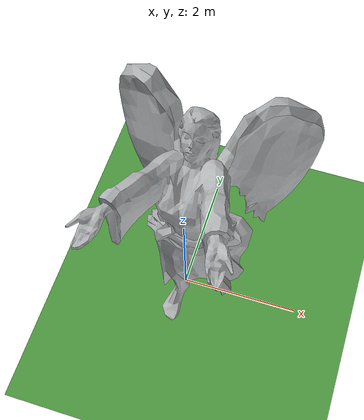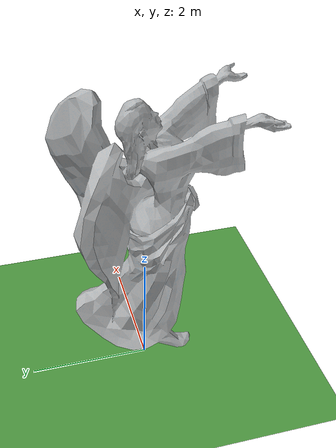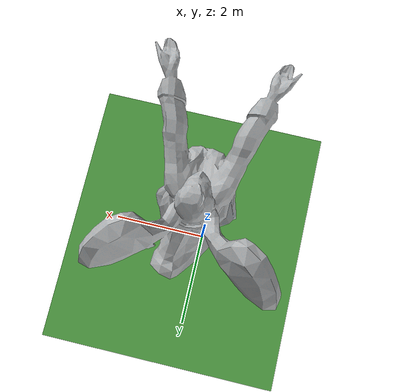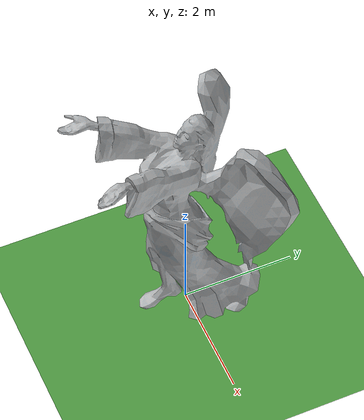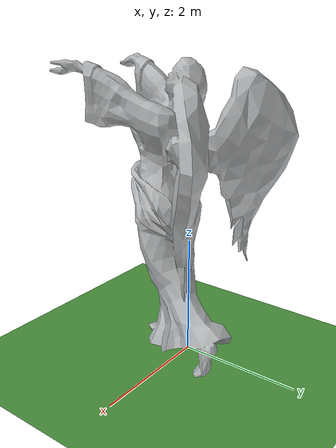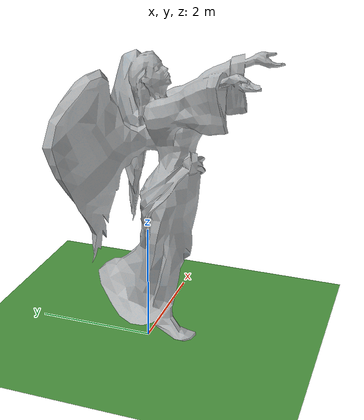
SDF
<?xml version="1.0" ?>
<sdf version="1.4">
  <world name="default">
    <include>
      <uri>model://grass_plane</uri>
    </include>

    <scene>
      <ambient>0.7 0.7 0.7 1</ambient>
      <background>0.9 0.9 0.9 1</background>
      <shadows>0</shadows>
    </scene>

    <light type="point" name="point_light_1">
      <pose>3 3 1 0 0 0</pose>
      <diffuse>0.7 0.7 0.7 1</diffuse>
      <specular>.5 .5 .5 1</specular>
      <direction>-1 -1 -1</direction>
      <attenuation>
        <range>30</range>
        <linear>0.01</linear>
        <constant>0.40</constant>
        <quadratic>0.0</quadratic>
      </attenuation>
      <cast_shadows>false</cast_shadows>
    </light>

    <light type="point" name="point_light_2">
      <pose>3 -3 1 0 0 0</pose>
      <diffuse>0.7 0.7 0.7 1</diffuse>
      <specular>.5 .5 .5 1</specular>
      <direction>-1 -1 -1</direction>
      <attenuation>
        <range>30</range>
        <linear>0.01</linear>
        <constant>0.40</constant>
        <quadratic>0.0</quadratic>
      </attenuation>
      <cast_shadows>false</cast_shadows>
    </light>

    <light type="point" name="point_light_3">
      <pose>-3 -3 1 0 0 0</pose>
      <diffuse>0.7 0.7 0.7 1</diffuse>
      <specular>.5 .5 .5 1</specular>
      <direction>-1 -1 -1</direction>
      <attenuation>
        <range>30</range>
        <linear>0.01</linear>
        <constant>0.40</constant>
        <quadratic>0.0</quadratic>
      </attenuation>
      <cast_shadows>false</cast_shadows>
    </light>

    <light type="point" name="point_light_4">
      <pose>-3 3 1 0 0 0</pose>
      <diffuse>0.7 0.7 0.7 1</diffuse>
      <specular>.5 .5 .5 1</specular>
      <direction>-1 -1 -1</direction>
      <attenuation>
        <range>30</range>
        <linear>0.01</linear>
        <constant>0.40</constant>
        <quadratic>0.0</quadratic>
      </attenuation>
      <cast_shadows>false</cast_shadows>
    </light>

    <plugin name="ros_interface_plugin" filename="librotors_gazebo_ros_interface_plugin.so"/>

    <spherical_coordinates>
      <surface_model>EARTH_WGS84</surface_model>
      <latitude_deg>47.3667</latitude_deg>
      <longitude_deg>8.5500</longitude_deg>
      <elevation>500.0</elevation>
      <heading_deg>0</heading_deg>
    </spherical_coordinates>

    <physics type='ode'>
      <ode>
        <solver>
          <type>quick</type>
          <iters>1000</iters>
          <sor>1.3</sor>
        </solver>
        <constraints>
          <cfm>0</cfm>
          <erp>0.2</erp>
          <contact_max_correcting_vel>100</contact_max_correcting_vel>
          <contact_surface_layer>0.001</contact_surface_layer>
        </constraints>
      </ode>
      <max_step_size>0.01</max_step_size>
      <real_time_factor>1</real_time_factor>
      <real_time_update_rate>100</real_time_update_rate>
      <gravity>0 0 -9.8</gravity>
    </physics>

    <include>
      <uri>model://statue_angel</uri>
      <pose>0 0 0.0 0.0 0.0 0.0</pose>
      <name>floor_arena</name>
    </include>

  </world>
</sdf>

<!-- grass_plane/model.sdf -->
<sdf version="1.5">
  <model name="grass_plane">
    <static>true</static>
    <link name="link">
      <collision name="collision">
        <geometry>
          <plane>
            <normal>0 0 1</normal>
            <size>100 100</size>
          </plane>
        </geometry>
        <surface>
          <contact>
             <collide_bitmask>0xffff</collide_bitmask>
          </contact>
          <friction>
            <ode>
              <mu>100</mu>
              <mu2>50</mu2>
            </ode>
          </friction>
        </surface>
      </collision>
      <visual name="visual">
        <cast_shadows>false</cast_shadows>
        <geometry>
          <plane>
            <normal>0 0 1</normal>
            <size>100 100</size>
          </plane>
        </geometry>
        <material>
          <script>
            <uri>file://media/materials/scripts/gazebo.material</uri>
            <name>Gazebo/Grass</name>
          </script>
        </material>
      </visual>
    </link>
  </model>
</sdf>

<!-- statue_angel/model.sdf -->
<sdf version="1.5">
  <model name="statue_angel">
    <static>true</static>
    <link name="link">
      <pose>0 0 0 0 0 0</pose>
      <collision name="collision">
        <geometry>
          <box>
            <size>1.5 2.0 0.01</size>
          </box>
        </geometry>
      </collision>
      <visual name="visual">
        <cast_shadows>false</cast_shadows>
        <geometry>
          <mesh>
            <uri>model://statue_angel/meshes/model.dae</uri>
          </mesh>
        </geometry>
        <material>
          <script>
            <uri>model://statue_angel/meshes/model</uri>
          </script>
        </material>
      </visual>
    </link>
  </model>

</sdf>
